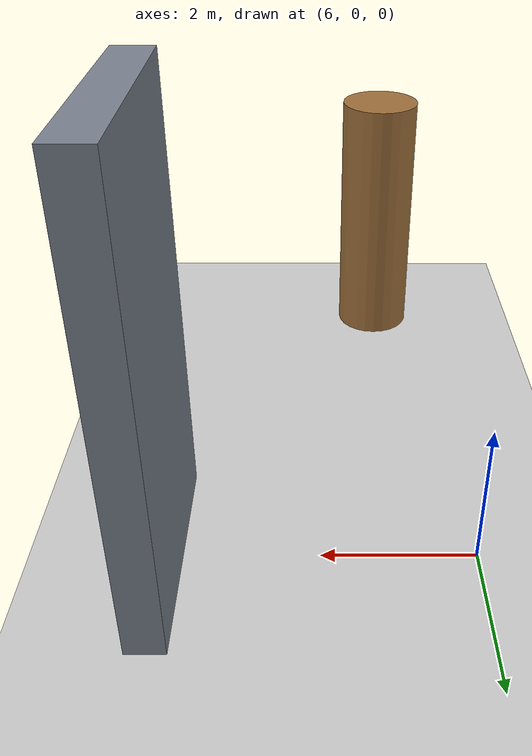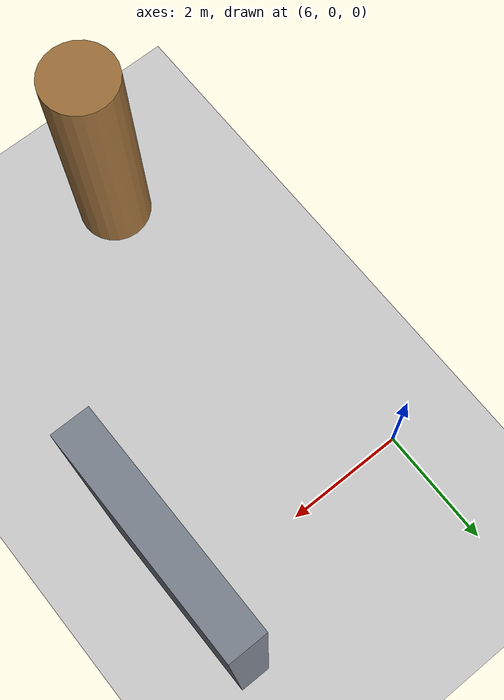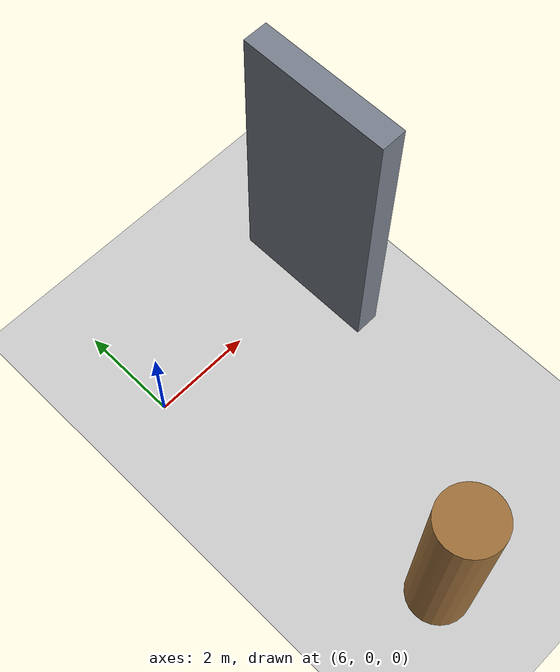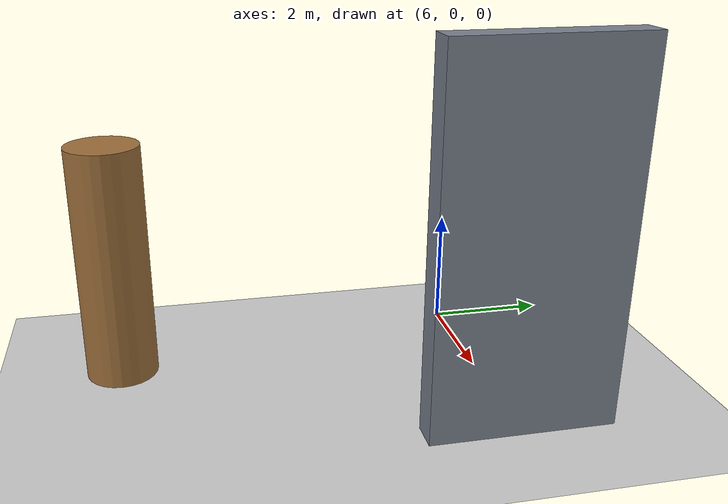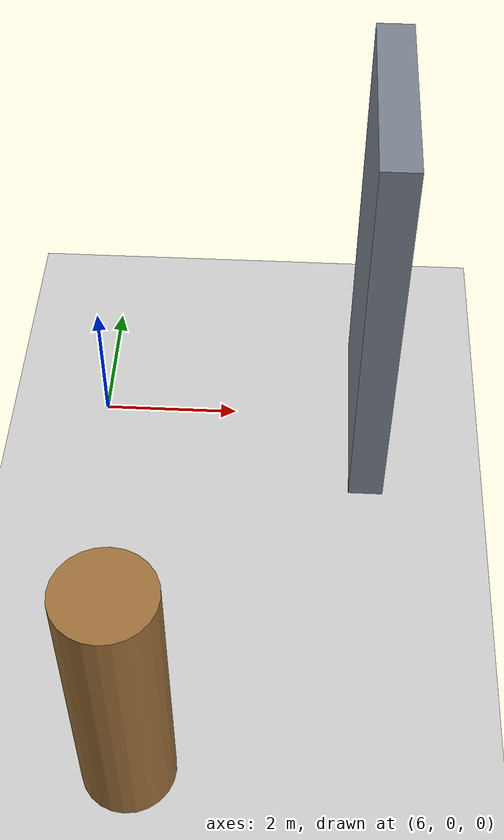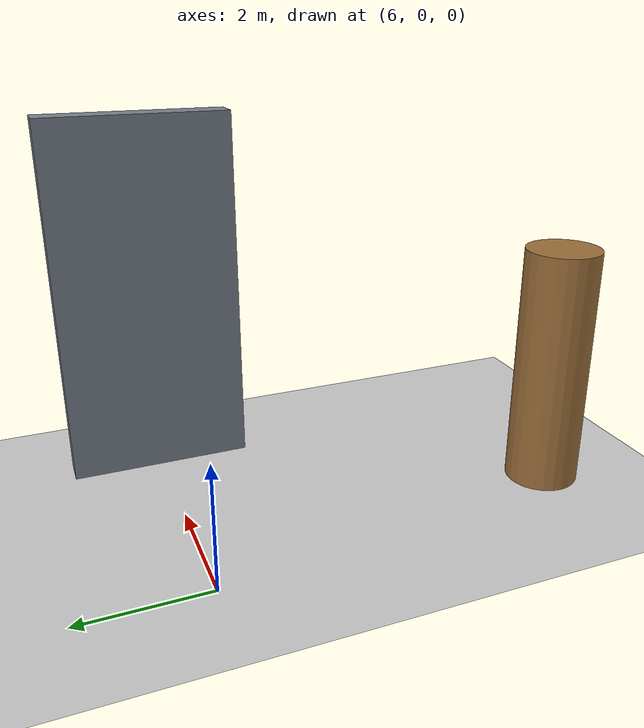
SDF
<?xml version="1.0"?>
<sdf version="1.6">
  <world name="E4_long_occlusion">
    <gravity>0 0 -9.80665</gravity>
    <physics name="ode_1khz" type="ode">
      <max_step_size>0.001</max_step_size>
      <real_time_factor>1.0</real_time_factor>
      <real_time_update_rate>1000</real_time_update_rate>
    </physics>

    <scene>
      <ambient>0.35 0.35 0.35 1</ambient>
      <background>0.65 0.78 0.92 1</background>
      <shadows>false</shadows>
    </scene>

    <light name="sun" type="directional">
      <cast_shadows>false</cast_shadows>
      <pose>0 0 10 0 0 0</pose>
      <diffuse>0.9 0.9 0.9 1</diffuse>
      <specular>0.1 0.1 0.1 1</specular>
      <direction>-0.4 0.2 -0.9</direction>
    </light>

    <include>
      <uri>model://mid360_open_ground</uri>
      <name>open_ground</name>
    </include>

    <!-- Wide enough to hide the complete UAV primitive, including rotors. -->
    <model name="background_wall">
      <static>true</static>
      <link name="wall_link">
        <collision name="wall_collision">
          <pose>10 0 3 0 0 0</pose>
          <geometry><box><size>0.50 3.00 6.00</size></box></geometry>
        </collision>
        <visual name="wall_visual">
          <pose>10 0 3 0 0 0</pose>
          <geometry><box><size>0.50 3.00 6.00</size></box></geometry>
          <material>
            <ambient>0.34 0.36 0.40 1</ambient>
            <diffuse>0.48 0.51 0.56 1</diffuse>
          </material>
        </visual>
      </link>
    </model>

    <include>
      <uri>model://pillar</uri>
      <name>pillar</name>
      <pose>7 -6 0 0 0 0</pose>
    </include>
  </world>
</sdf>

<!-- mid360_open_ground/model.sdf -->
<sdf version="1.6">
  <model name="mid360_open_ground">
    <static>true</static>
    <link name="ground_link">
      <collision name="ground_collision">
        <geometry>
          <plane>
            <normal>0 0 1</normal>
            <size>100 100</size>
          </plane>
        </geometry>
        <surface>
          <friction>
            <ode>
              <mu>1.0</mu>
              <mu2>1.0</mu2>
            </ode>
          </friction>
        </surface>
      </collision>
      <visual name="ground_visual">
        <geometry>
          <plane>
            <normal>0 0 1</normal>
            <size>160 120</size>
          </plane>
        </geometry>
        <material>
          <script>
            <uri>model://mid360_open_ground/materials/scripts</uri>
            <uri>model://cloverleaf_interchange/materials/textures</uri>
            <name>AeroCOVER/Concrete</name>
          </script>
        </material>
      </visual>
    </link>
  </model>
</sdf>

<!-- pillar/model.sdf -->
<sdf version="1.6">
  <model name="pillar">
    <static>true</static>
    <link name="pillar_link">
      <collision name="pillar_collision">
        <pose>0 0 2.0 0 0 0</pose>
        <geometry>
          <cylinder>
            <radius>0.60</radius>
            <length>4.0</length>
          </cylinder>
        </geometry>
        <surface>
          <contact>
            <collide_without_contact>true</collide_without_contact>
          </contact>
        </surface>
      </collision>
      <visual name="pillar_visual">
        <pose>0 0 2.0 0 0 0</pose>
        <geometry>
          <cylinder>
            <radius>0.60</radius>
            <length>4.0</length>
          </cylinder>
        </geometry>
        <material>
          <ambient>0.42 0.30 0.16 1</ambient>
          <diffuse>0.62 0.44 0.23 1</diffuse>
          <specular>0.02 0.02 0.02 1</specular>
        </material>
      </visual>
    </link>
  </model>
</sdf>
